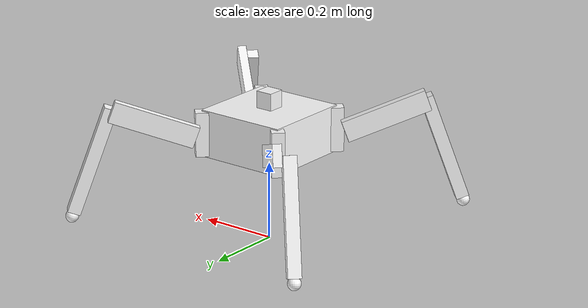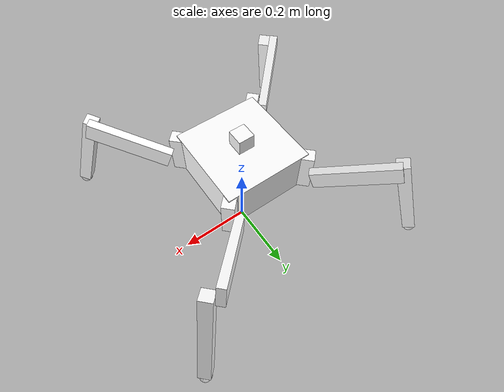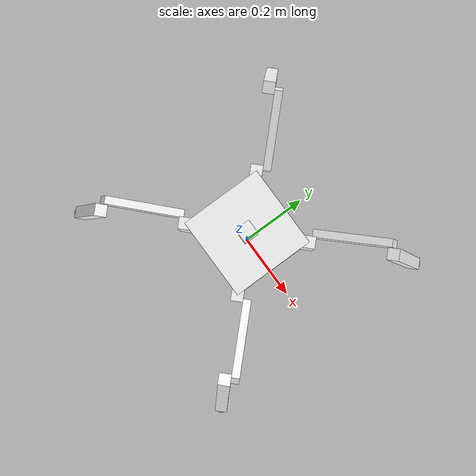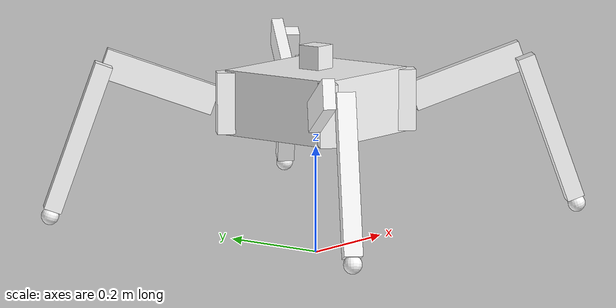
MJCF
<mujoco model="quadruped">
    <compiler angle="radian" />
    <size njmax="500" nconmax="100" />
    <worldbody>
        <body name="dummy" pos="0 0 0">
            <inertial pos="0 0 0" mass="0" diaginertia="0 0 0" />
            <body name="dummy_link" pos="0 0 0">
                <inertial pos="0 0 0" mass="0.01" diaginertia="1e-05 1e-05 1e-05" />
                <body name="base_link" pos="0 0 0.286">
                    <inertial pos="0 0 0" mass="4.2592" diaginertia="0.0400746 0.0400746 0.0400746" />
                    <geom size="0.1188 0.1188 0.0605" type="box" rgba="1 1 1 1" />
                    <body name="imu_link" pos="0 0 0.0825">
                        <inertial pos="0 0 0" mass="0.5324" diaginertia="0.000171788 0.000171788 0.000171788" />
                        <geom size="0.022 0.022 0.022" type="box" rgba="1 1 1 1" />
                    </body>
                    <body name="front_right_leg3" pos="0.1188 0.1188 0" quat="0.92388 0 0 0.382683">
                        <inertial pos="0 0 0" mass="1.0648" diaginertia="0.000193261 0.000193261 0.000193261" />
                        <joint name="front_right_leg3_joint" pos="0 0 0" axis="0 0 1" limited="true" range="-1.0472 1.0472" />
                        <geom size="0.0165 0.0165 0.0572" type="box" rgba="1 1 1 1" />
                        <body name="front_right_leg2" pos="0.0165 0.0165 0">
                            <inertial pos="0 0 0" mass="0.5324" diaginertia="0.00216882 0.00216882 0.00216882" />
                            <joint name="front_right_leg2_joint" pos="0 0 0" axis="0 1 0" limited="true" range="-1.0472 1.0472" />
                            <geom size="0.11 0.011 0.0275" pos="0.103366 0.011 0.0376222" quat="0.173648 0 0.984808 0" type="box" rgba="1 1 1 1" />
                            <body name="front_right_leg1" pos="0.206732 0 0.0752444" quat="0.984808 0 -0.173648 0">
                                <inertial pos="0 0 0" mass="8.5184" diaginertia="0.0588373 0.0588373 0.0588373" />
                                <joint name="front_right_leg1_joint" pos="0 0 0" axis="0 1 0" limited="true" range="-1.0472 1.0472" />
                                <geom size="0.0165 0.0165 0.143" pos="0 -0.0165 -0.143" type="box" rgba="1 1 1 1" />
                                <body name="front_right_leg_tip" pos="0 -0.0165 -0.297633">
                                    <inertial pos="0 0 0" mass="0.21296" diaginertia="0.1 0.1 0.1" />
                                    <geom size="0.0165" rgba="1 1 1 1" />
                                </body>
                            </body>
                        </body>
                    </body>
                    <body name="front_left_leg3" pos="-0.1188 0.1188 0" quat="0.382683 0 0 0.92388">
                        <inertial pos="0 0 0" mass="1.0648" diaginertia="0.000193261 0.000193261 0.000193261" />
                        <joint name="front_left_leg3_joint" pos="0 0 0" axis="0 0 1" limited="true" range="-1.0472 1.0472" />
                        <geom size="0.0165 0.0165 0.0572" type="box" rgba="1 1 1 1" />
                        <body name="front_left_leg2" pos="0.0165 -0.0165 0">
                            <inertial pos="0 0 0" mass="0.5324" diaginertia="0.00216882 0.00216882 0.00216882" />
                            <joint name="front_left_leg2_joint" pos="0 0 0" axis="0 1 0" limited="true" range="-1.0472 1.0472" />
                            <geom size="0.11 0.011 0.0275" pos="0.103366 -0.011 0.0376222" quat="0.173648 0 0.984808 0" type="box" rgba="1 1 1 1" />
                            <body name="front_left_leg1" pos="0.206732 0 0.0752444" quat="0.984808 0 -0.173648 0">
                                <inertial pos="0 0 0" mass="8.5184" diaginertia="0.0588373 0.0588373 0.0588373" />
                                <joint name="front_left_leg1_joint" pos="0 0 0" axis="0 1 0" limited="true" range="-1.0472 1.0472" />
                                <geom size="0.0165 0.0165 0.143" pos="0 0.0165 -0.143" type="box" rgba="1 1 1 1" />
                                <body name="front_left_leg_tip" pos="0 0.0165 -0.297633">
                                    <inertial pos="0 0 0" mass="0.21296" diaginertia="0.1 0.1 0.1" />
                                    <geom size="0.0165" rgba="1 1 1 1" />
                                </body>
                            </body>
                        </body>
                    </body>
                    <body name="back_right_leg3" pos="0.1188 -0.1188 0" quat="0.92388 0 0 -0.382683">
                        <inertial pos="0 0 0" mass="1.0648" diaginertia="0.000193261 0.000193261 0.000193261" />
                        <joint name="back_right_leg3_joint" pos="0 0 0" axis="0 0 1" limited="true" range="-1.0472 1.0472" />
                        <geom size="0.0165 0.0165 0.0572" type="box" rgba="1 1 1 1" />
                        <body name="back_right_leg2" pos="0.0165 0.0165 0">
                            <inertial pos="0 0 0" mass="0.5324" diaginertia="0.00216882 0.00216882 0.00216882" />
                            <joint name="back_right_leg2_joint" pos="0 0 0" axis="0 1 0" limited="true" range="-1.0472 1.0472" />
                            <geom size="0.11 0.011 0.0275" pos="0.103366 0.011 0.0376222" quat="0.173648 0 0.984808 0" type="box" rgba="1 1 1 1" />
                            <body name="back_right_leg1" pos="0.206732 0 0.0752444" quat="0.984808 0 -0.173648 0">
                                <inertial pos="0 0 0" mass="8.5184" diaginertia="0.0588373 0.0588373 0.0588373" />
                                <joint name="back_right_leg1_joint" pos="0 0 0" axis="0 1 0" limited="true" range="-1.0472 1.0472" />
                                <geom size="0.0165 0.0165 0.143" pos="0 -0.0165 -0.143" type="box" rgba="1 1 1 1" />
                                <body name="back_right_leg_tip" pos="0 -0.0165 -0.297633">
                                    <inertial pos="0 0 0" mass="0.21296" diaginertia="0.1 0.1 0.1" />
                                    <geom size="0.0165" rgba="1 1 1 1" />
                                </body>
                            </body>
                        </body>
                    </body>
                    <body name="back_left_leg3" pos="-0.1188 -0.1188 0" quat="0.382683 0 0 -0.92388">
                        <inertial pos="0 0 0" mass="1.0648" diaginertia="0.000193261 0.000193261 0.000193261" />
                        <joint name="back_left_leg3_joint" pos="0 0 0" axis="0 0 1" limited="true" range="-1.0472 1.0472" />
                        <geom size="0.0165 0.0165 0.0572" type="box" rgba="1 1 1 1" />
                        <body name="back_left_leg2" pos="0.0165 -0.0165 0">
                            <inertial pos="0 0 0" mass="0.5324" diaginertia="0.00216882 0.00216882 0.00216882" />
                            <joint name="back_left_leg2_joint" pos="0 0 0" axis="0 1 0" limited="true" range="-1.0472 1.0472" />
                            <geom size="0.11 0.011 0.0275" pos="0.103366 -0.011 0.0376222" quat="0.173648 0 0.984808 0" type="box" rgba="1 1 1 1" />
                            <body name="back_left_leg1" pos="0.206732 0 0.0752444" quat="0.984808 0 -0.173648 0">
                                <inertial pos="0 0 0" mass="8.5184" diaginertia="0.0588373 0.0588373 0.0588373" />
                                <joint name="back_left_leg1_joint" pos="0 0 0" axis="0 1 0" limited="true" range="-1.0472 1.0472" />
                                <geom size="0.0165 0.0165 0.143" pos="0 0.0165 -0.143" type="box" rgba="1 1 1 1" />
                                <body name="back_left_leg_tip" pos="0 0.0165 -0.297633">
                                    <inertial pos="0 0 0" mass="0.21296" diaginertia="0.1 0.1 0.1" />
                                    <geom size="0.0165" rgba="1 1 1 1" />
                                </body>
                            </body>
                        </body>
                    </body>
                </body>
            </body>
        </body>
    </worldbody>
</mujoco>
